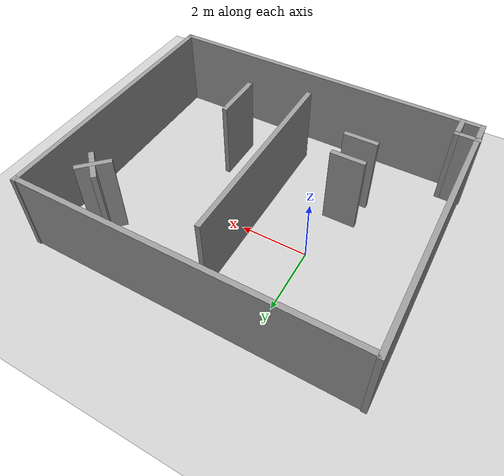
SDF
<sdf version="1.6">
 <world name="default">
  <light name="sun" type="directional">
   <pose>0 0 10 0 -0 0</pose>
   <diffuse>0.8 0.8 0.8 1</diffuse>
   <specular>0.2 0.2 0.2 1</specular>
   <attenuation>
    <range>1000</range>
    <constant>0.9</constant>
    <linear>0.01</linear>
    <quadratic>0.001</quadratic>
   </attenuation>
   <direction>-0.5 0.1 -0.9</direction>
  </light>
  <model name="ground_plane">
   <static>1</static>
   <link name="link">
    <collision name="collision">
     <geometry><plane><normal>0 0 1</normal><size>100 100</size></plane></geometry>
     <surface>
      <contact><collide_bitmask>65535</collide_bitmask></contact>
      <friction><ode><mu>100</mu><mu2>50</mu2></ode></friction>
     </surface>
    </collision>
    <visual name="visual">
     <cast_shadows>0</cast_shadows>
     <geometry><plane><normal>0 0 1</normal><size>100 100</size></plane></geometry>
     <material>
      <script><uri>file://media/materials/scripts/gazebo.material</uri><name>Gazebo/Grey</name></script>
     </material>
    </visual>
   </link>
  </model>
  <physics name="default_physics" default="0" type="ode">
   <real_time_update_rate>1000</real_time_update_rate>
   <max_step_size>0.001</max_step_size>
   <real_time_factor>1</real_time_factor>
   <ode>
    <solver>
     <type>quick</type>
     <iters>150</iters>
     <precon_iters>0</precon_iters>
     <sor>1.4</sor>
     <use_dynamic_moi_rescaling>1</use_dynamic_moi_rescaling>
    </solver>
    <constraints>
     <cfm>1e-05</cfm>
     <erp>0.2</erp>
     <contact_max_correcting_vel>2000</contact_max_correcting_vel>
     <contact_surface_layer>0.01</contact_surface_layer>
    </constraints>
   </ode>
  </physics>
  <model name="sim_world_1">
   <pose>1.82422 -0.69519 0 0 0 -3.14159</pose>
   <link name="Wall_0">
    <pose>-0.016842 -3.925 0 0 -0 0</pose>
    <visual name="Wall_0_Visual">
     <pose>0 0 1.25 0 -0 0</pose>
     <geometry><box><size>10 0.15 2.5</size></box></geometry>
     <material>
      <script><uri>file://media/materials/scripts/gazebo.material</uri><name>Gazebo/Grey</name></script>
      <ambient>1 1 1 1</ambient>
     </material>
     <meta><layer>0</layer></meta>
    </visual>
    <collision name="Wall_0_Collision">
     <pose>0 0 1.25 0 -0 0</pose>
     <geometry><box><size>10 0.15 2.5</size></box></geometry>
     <surface>
      <friction>
       <ode><mu>1</mu><mu2>1</mu2><fdir1>0 0 0</fdir1><slip1>0</slip1><slip2>0</slip2></ode>
       <torsional>
        <coefficient>1</coefficient>
        <patch_radius>0</patch_radius>
        <surface_radius>0</surface_radius>
        <use_patch_radius>1</use_patch_radius>
        <ode><slip>0</slip></ode>
       </torsional>
      </friction>
      <bounce><restitution_coefficient>0</restitution_coefficient><threshold>1e+06</threshold></bounce>
      <contact>
       <collide_without_contact>0</collide_without_contact>
       <collide_without_contact_bitmask>1</collide_without_contact_bitmask>
       <collide_bitmask>1</collide_bitmask>
       <ode>
        <soft_cfm>0</soft_cfm>
        <soft_erp>0.2</soft_erp>
        <kp>1e+13</kp>
        <kd>1</kd>
        <max_vel>0.01</max_vel>
        <min_depth>0</min_depth>
       </ode>
       <bullet>
        <split_impulse>1</split_impulse>
        <split_impulse_penetration_threshold>-0.01</split_impulse_penetration_threshold>
        <soft_cfm>0</soft_cfm>
        <soft_erp>0.2</soft_erp>
        <kp>1e+13</kp>
        <kd>1</kd>
       </bullet>
      </contact>
     </surface>
    </collision>
   </link>
   <link name="Wall_1">
    <pose>4.90816 0 0 0 -0 1.5708</pose>
    <visual name="Wall_1_Visual">
     <pose>0 0 1.25 0 -0 0</pose>
     <geometry><box><size>8.0532 0.15 2.5</size></box></geometry>
     <material>
      <script><uri>file://media/materials/scripts/gazebo.material</uri><name>Gazebo/Grey</name></script>
      <ambient>1 1 1 1</ambient>
     </material>
     <meta><layer>0</layer></meta>
    </visual>
    <collision name="Wall_1_Collision">
     <pose>0 0 1.25 0 -0 0</pose>
     <geometry><box><size>8.0532 0.15 2.5</size></box></geometry>
     <surface>
      <friction>
       <ode><mu>1</mu><mu2>1</mu2><fdir1>0 0 0</fdir1><slip1>0</slip1><slip2>0</slip2></ode>
       <torsional>
        <coefficient>1</coefficient>
        <patch_radius>0</patch_radius>
        <surface_radius>0</surface_radius>
        <use_patch_radius>1</use_patch_radius>
        <ode><slip>0</slip></ode>
       </torsional>
      </friction>
      <bounce><restitution_coefficient>0</restitution_coefficient><threshold>1e+06</threshold></bounce>
      <contact>
       <collide_without_contact>0</collide_without_contact>
       <collide_without_contact_bitmask>1</collide_without_contact_bitmask>
       <collide_bitmask>1</collide_bitmask>
       <ode>
        <soft_cfm>0</soft_cfm>
        <soft_erp>0.2</soft_erp>
        <kp>1e+13</kp>
        <kd>1</kd>
        <max_vel>0.01</max_vel>
        <min_depth>0</min_depth>
       </ode>
       <bullet>
        <split_impulse>1</split_impulse>
        <split_impulse_penetration_threshold>-0.01</split_impulse_penetration_threshold>
        <soft_cfm>0</soft_cfm>
        <soft_erp>0.2</soft_erp>
        <kp>1e+13</kp>
        <kd>1</kd>
       </bullet>
      </contact>
     </surface>
    </collision>
   </link>
   <link name="Wall_10">
    <pose>-3.57656 -2.54651 0 0 -0 0.785398</pose>
    <visual name="Wall_10_Visual">
     <pose>0 0 1.25 0 -0 0</pose>
     <geometry><box><size>1 0.15 2.5</size></box></geometry>
     <material>
      <script><uri>file://media/materials/scripts/gazebo.material</uri><name>Gazebo/Grey</name></script>
      <ambient>1 1 1 1</ambient>
     </material>
     <meta><layer>0</layer></meta>
    </visual>
    <collision name="Wall_10_Collision">
     <pose>0 0 1.25 0 -0 0</pose>
     <geometry><box><size>1 0.15 2.5</size></box></geometry>
     <surface>
      <friction>
       <ode><mu>1</mu><mu2>1</mu2><fdir1>0 0 0</fdir1><slip1>0</slip1><slip2>0</slip2></ode>
       <torsional>
        <coefficient>1</coefficient>
        <patch_radius>0</patch_radius>
        <surface_radius>0</surface_radius>
        <use_patch_radius>1</use_patch_radius>
        <ode><slip>0</slip></ode>
       </torsional>
      </friction>
      <bounce><restitution_coefficient>0</restitution_coefficient><threshold>1e+06</threshold></bounce>
      <contact>
       <collide_without_contact>0</collide_without_contact>
       <collide_without_contact_bitmask>1</collide_without_contact_bitmask>
       <collide_bitmask>1</collide_bitmask>
       <ode>
        <soft_cfm>0</soft_cfm>
        <soft_erp>0.2</soft_erp>
        <kp>1e+13</kp>
        <kd>1</kd>
        <max_vel>0.01</max_vel>
        <min_depth>0</min_depth>
       </ode>
       <bullet>
        <split_impulse>1</split_impulse>
        <split_impulse_penetration_threshold>-0.01</split_impulse_penetration_threshold>
        <soft_cfm>0</soft_cfm>
        <soft_erp>0.2</soft_erp>
        <kp>1e+13</kp>
        <kd>1</kd>
       </bullet>
      </contact>
     </surface>
    </collision>
   </link>
   <link name="Wall_12">
    <pose>-3.58163 -2.57159 0 0 0 -0.785398</pose>
    <visual name="Wall_12_Visual">
     <pose>0 0 1.25 0 -0 0</pose>
     <geometry><box><size>1 0.15 2.5</size></box></geometry>
     <material>
      <script><uri>file://media/materials/scripts/gazebo.material</uri><name>Gazebo/Grey</name></script>
      <ambient>1 1 1 1</ambient>
     </material>
     <meta><layer>0</layer></meta>
    </visual>
    <collision name="Wall_12_Collision">
     <pose>0 0 1.25 0 -0 0</pose>
     <geometry><box><size>1 0.15 2.5</size></box></geometry>
     <surface>
      <friction>
       <ode><mu>1</mu><mu2>1</mu2><fdir1>0 0 0</fdir1><slip1>0</slip1><slip2>0</slip2></ode>
       <torsional>
        <coefficient>1</coefficient>
        <patch_radius>0</patch_radius>
        <surface_radius>0</surface_radius>
        <use_patch_radius>1</use_patch_radius>
        <ode><slip>0</slip></ode>
       </torsional>
      </friction>
      <bounce><restitution_coefficient>0</restitution_coefficient><threshold>1e+06</threshold></bounce>
      <contact>
       <collide_without_contact>0</collide_without_contact>
       <collide_without_contact_bitmask>1</collide_without_contact_bitmask>
       <collide_bitmask>1</collide_bitmask>
       <ode>
        <soft_cfm>0</soft_cfm>
        <soft_erp>0.2</soft_erp>
        <kp>1e+13</kp>
        <kd>1</kd>
        <max_vel>0.01</max_vel>
        <min_depth>0</min_depth>
       </ode>
       <bullet>
        <split_impulse>1</split_impulse>
        <split_impulse_penetration_threshold>-0.01</split_impulse_penetration_threshold>
        <soft_cfm>0</soft_cfm>
        <soft_erp>0.2</soft_erp>
        <kp>1e+13</kp>
        <kd>1</kd>
       </bullet>
      </contact>
     </surface>
    </collision>
   </link>
   <link name="Wall_14">
    <pose>4.34184 3.63889 0 0 0 -1.5708</pose>
    <visual name="Wall_14_Visual">
     <pose>0 0 1.25 0 -0 0</pose>
     <geometry><box><size>0.75 0.15 2.5</size></box></geometry>
     <material>
      <script><uri>file://media/materials/scripts/gazebo.material</uri><name>Gazebo/Grey</name></script>
      <ambient>1 1 1 1</ambient>
     </material>
     <meta><layer>0</layer></meta>
    </visual>
    <collision name="Wall_14_Collision">
     <pose>0 0 1.25 0 -0 0</pose>
     <geometry><box><size>0.75 0.15 2.5</size></box></geometry>
     <surface>
      <friction>
       <ode><mu>1</mu><mu2>1</mu2><fdir1>0 0 0</fdir1><slip1>0</slip1><slip2>0</slip2></ode>
       <torsional>
        <coefficient>1</coefficient>
        <patch_radius>0</patch_radius>
        <surface_radius>0</surface_radius>
        <use_patch_radius>1</use_patch_radius>
        <ode><slip>0</slip></ode>
       </torsional>
      </friction>
      <bounce><restitution_coefficient>0</restitution_coefficient><threshold>1e+06</threshold></bounce>
      <contact>
       <collide_without_contact>0</collide_without_contact>
       <collide_without_contact_bitmask>1</collide_without_contact_bitmask>
       <collide_bitmask>1</collide_bitmask>
       <ode>
        <soft_cfm>0</soft_cfm>
        <soft_erp>0.2</soft_erp>
        <kp>1e+13</kp>
        <kd>1</kd>
        <max_vel>0.01</max_vel>
        <min_depth>0</min_depth>
       </ode>
       <bullet>
        <split_impulse>1</split_impulse>
        <split_impulse_penetration_threshold>-0.01</split_impulse_penetration_threshold>
        <soft_cfm>0</soft_cfm>
        <soft_erp>0.2</soft_erp>
        <kp>1e+13</kp>
        <kd>1</kd>
       </bullet>
      </contact>
     </surface>
    </collision>
   </link>
   <link name="Wall_15">
    <pose>4.64184 3.33889 0 0 -0 0</pose>
    <visual name="Wall_15_Visual">
     <pose>0 0 1.25 0 -0 0</pose>
     <geometry><box><size>0.75 0.15 2.5</size></box></geometry>
     <material>
      <script><uri>file://media/materials/scripts/gazebo.material</uri><name>Gazebo/Grey</name></script>
      <ambient>1 1 1 1</ambient>
     </material>
     <meta><layer>0</layer></meta>
    </visual>
    <collision name="Wall_15_Collision">
     <pose>0 0 1.25 0 -0 0</pose>
     <geometry><box><size>0.75 0.15 2.5</size></box></geometry>
     <surface>
      <friction>
       <ode><mu>1</mu><mu2>1</mu2><fdir1>0 0 0</fdir1><slip1>0</slip1><slip2>0</slip2></ode>
       <torsional>
        <coefficient>1</coefficient>
        <patch_radius>0</patch_radius>
        <surface_radius>0</surface_radius>
        <use_patch_radius>1</use_patch_radius>
        <ode><slip>0</slip></ode>
       </torsional>
      </friction>
      <bounce><restitution_coefficient>0</restitution_coefficient><threshold>1e+06</threshold></bounce>
      <contact>
       <collide_without_contact>0</collide_without_contact>
       <collide_without_contact_bitmask>1</collide_without_contact_bitmask>
       <collide_bitmask>1</collide_bitmask>
       <ode>
        <soft_cfm>0</soft_cfm>
        <soft_erp>0.2</soft_erp>
        <kp>1e+13</kp>
        <kd>1</kd>
        <max_vel>0.01</max_vel>
        <min_depth>0</min_depth>
       </ode>
       <bullet>
        <split_impulse>1</split_impulse>
        <split_impulse_penetration_threshold>-0.01</split_impulse_penetration_threshold>
        <soft_cfm>0</soft_cfm>
        <soft_erp>0.2</soft_erp>
        <kp>1e+13</kp>
        <kd>1</kd>
       </bullet>
      </contact>
     </surface>
    </collision>
   </link>
   <link name="Wall_17">
    <pose>-1.80727 1.833 0 0 0 -1.5708</pose>
    <visual name="Wall_17_Visual">
     <pose>0 0 1.25 0 -0 0</pose>
     <geometry><box><size>1.5 0.15 2.5</size></box></geometry>
     <material>
      <script><uri>file://media/materials/scripts/gazebo.material</uri><name>Gazebo/Grey</name></script>
      <ambient>1 1 1 1</ambient>
     </material>
     <meta><layer>0</layer></meta>
    </visual>
    <collision name="Wall_17_Collision">
     <pose>0 0 1.25 0 -0 0</pose>
     <geometry><box><size>1.5 0.15 2.5</size></box></geometry>
     <surface>
      <friction>
       <ode><mu>1</mu><mu2>1</mu2><fdir1>0 0 0</fdir1><slip1>0</slip1><slip2>0</slip2></ode>
       <torsional>
        <coefficient>1</coefficient>
        <patch_radius>0</patch_radius>
        <surface_radius>0</surface_radius>
        <use_patch_radius>1</use_patch_radius>
        <ode><slip>0</slip></ode>
       </torsional>
      </friction>
      <bounce><restitution_coefficient>0</restitution_coefficient><threshold>1e+06</threshold></bounce>
      <contact>
       <collide_without_contact>0</collide_without_contact>
       <collide_without_contact_bitmask>1</collide_without_contact_bitmask>
       <collide_bitmask>1</collide_bitmask>
       <ode>
        <soft_cfm>0</soft_cfm>
        <soft_erp>0.2</soft_erp>
        <kp>1e+13</kp>
        <kd>1</kd>
        <max_vel>0.01</max_vel>
        <min_depth>0</min_depth>
       </ode>
       <bullet>
        <split_impulse>1</split_impulse>
        <split_impulse_penetration_threshold>-0.01</split_impulse_penetration_threshold>
        <soft_cfm>0</soft_cfm>
        <soft_erp>0.2</soft_erp>
        <kp>1e+13</kp>
        <kd>1</kd>
       </bullet>
      </contact>
     </surface>
    </collision>
   </link>
   <link name="Wall_2">
    <pose>-0.016842 3.9516 0 0 -0 3.14159</pose>
    <visual name="Wall_2_Visual">
     <pose>0 0 1.25 0 -0 0</pose>
     <geometry><box><size>10 0.15 2.5</size></box></geometry>
     <material>
      <script><uri>file://media/materials/scripts/gazebo.material</uri><name>Gazebo/Grey</name></script>
      <ambient>1 1 1 1</ambient>
     </material>
     <meta><layer>0</layer></meta>
    </visual>
    <collision name="Wall_2_Collision">
     <pose>0 0 1.25 0 -0 0</pose>
     <geometry><box><size>10 0.15 2.5</size></box></geometry>
     <surface>
      <friction>
       <ode><mu>1</mu><mu2>1</mu2><fdir1>0 0 0</fdir1><slip1>0</slip1><slip2>0</slip2></ode>
       <torsional>
        <coefficient>1</coefficient>
        <patch_radius>0</patch_radius>
        <surface_radius>0</surface_radius>
        <use_patch_radius>1</use_patch_radius>
        <ode><slip>0</slip></ode>
       </torsional>
      </friction>
      <bounce><restitution_coefficient>0</restitution_coefficient><threshold>1e+06</threshold></bounce>
      <contact>
       <collide_without_contact>0</collide_without_contact>
       <collide_without_contact_bitmask>1</collide_without_contact_bitmask>
       <collide_bitmask>1</collide_bitmask>
       <ode>
        <soft_cfm>0</soft_cfm>
        <soft_erp>0.2</soft_erp>
        <kp>1e+13</kp>
        <kd>1</kd>
        <max_vel>0.01</max_vel>
        <min_depth>0</min_depth>
       </ode>
       <bullet>
        <split_impulse>1</split_impulse>
        <split_impulse_penetration_threshold>-0.01</split_impulse_penetration_threshold>
        <soft_cfm>0</soft_cfm>
        <soft_erp>0.2</soft_erp>
        <kp>1e+13</kp>
        <kd>1</kd>
       </bullet>
      </contact>
     </surface>
    </collision>
   </link>
   <link name="Wall_22">
    <pose>2.12453 1.8423 0 0 -0 0</pose>
    <visual name="Wall_22_Visual">
     <pose>0 0 1.25 0 -0 0</pose>
     <geometry><box><size>1 0.15 2.5</size></box></geometry>
     <material>
      <script><uri>file://media/materials/scripts/gazebo.material</uri><name>Gazebo/Grey</name></script>
      <ambient>1 1 1 1</ambient>
     </material>
     <meta><layer>0</layer></meta>
    </visual>
    <collision name="Wall_22_Collision">
     <pose>0 0 1.25 0 -0 0</pose>
     <geometry><box><size>1 0.15 2.5</size></box></geometry>
     <surface>
      <friction>
       <ode><mu>1</mu><mu2>1</mu2><fdir1>0 0 0</fdir1><slip1>0</slip1><slip2>0</slip2></ode>
       <torsional>
        <coefficient>1</coefficient>
        <patch_radius>0</patch_radius>
        <surface_radius>0</surface_radius>
        <use_patch_radius>1</use_patch_radius>
        <ode><slip>0</slip></ode>
       </torsional>
      </friction>
      <bounce><restitution_coefficient>0</restitution_coefficient><threshold>1e+06</threshold></bounce>
      <contact>
       <collide_without_contact>0</collide_without_contact>
       <collide_without_contact_bitmask>1</collide_without_contact_bitmask>
       <collide_bitmask>1</collide_bitmask>
       <ode>
        <soft_cfm>0</soft_cfm>
        <soft_erp>0.2</soft_erp>
        <kp>1e+13</kp>
        <kd>1</kd>
        <max_vel>0.01</max_vel>
        <min_depth>0</min_depth>
       </ode>
       <bullet>
        <split_impulse>1</split_impulse>
        <split_impulse_penetration_threshold>-0.01</split_impulse_penetration_threshold>
        <soft_cfm>0</soft_cfm>
        <soft_erp>0.2</soft_erp>
        <kp>1e+13</kp>
        <kd>1</kd>
       </bullet>
      </contact>
     </surface>
    </collision>
   </link>
   <link name="Wall_24">
    <pose>2.11637 0.956027 0 0 -0 0</pose>
    <visual name="Wall_24_Visual">
     <pose>0 0 1.25 0 -0 0</pose>
     <geometry><box><size>1 0.15 2.5</size></box></geometry>
     <material>
      <script><uri>file://media/materials/scripts/gazebo.material</uri><name>Gazebo/Grey</name></script>
      <ambient>1 1 1 1</ambient>
     </material>
     <meta><layer>0</layer></meta>
    </visual>
    <collision name="Wall_24_Collision">
     <pose>0 0 1.25 0 -0 0</pose>
     <geometry><box><size>1 0.15 2.5</size></box></geometry>
     <surface>
      <friction>
       <ode><mu>1</mu><mu2>1</mu2><fdir1>0 0 0</fdir1><slip1>0</slip1><slip2>0</slip2></ode>
       <torsional>
        <coefficient>1</coefficient>
        <patch_radius>0</patch_radius>
        <surface_radius>0</surface_radius>
        <use_patch_radius>1</use_patch_radius>
        <ode><slip>0</slip></ode>
       </torsional>
      </friction>
      <bounce><restitution_coefficient>0</restitution_coefficient><threshold>1e+06</threshold></bounce>
      <contact>
       <collide_without_contact>0</collide_without_contact>
       <collide_without_contact_bitmask>1</collide_without_contact_bitmask>
       <collide_bitmask>1</collide_bitmask>
       <ode>
        <soft_cfm>0</soft_cfm>
        <soft_erp>0.2</soft_erp>
        <kp>1e+13</kp>
        <kd>1</kd>
        <max_vel>0.01</max_vel>
        <min_depth>0</min_depth>
       </ode>
       <bullet>
        <split_impulse>1</split_impulse>
        <split_impulse_penetration_threshold>-0.01</split_impulse_penetration_threshold>
        <soft_cfm>0</soft_cfm>
        <soft_erp>0.2</soft_erp>
        <kp>1e+13</kp>
        <kd>1</kd>
       </bullet>
      </contact>
     </surface>
    </collision>
   </link>
   <link name="Wall_3">
    <pose>-4.94184 0 0 0 0 -1.5708</pose>
    <visual name="Wall_3_Visual">
     <pose>0 0 1.25 0 -0 0</pose>
     <geometry><box><size>8.0532 0.15 2.5</size></box></geometry>
     <material>
      <script><uri>file://media/materials/scripts/gazebo.material</uri><name>Gazebo/Grey</name></script>
      <ambient>1 1 1 1</ambient>
     </material>
     <meta><layer>0</layer></meta>
    </visual>
    <collision name="Wall_3_Collision">
     <pose>0 0 1.25 0 -0 0</pose>
     <geometry><box><size>8.0532 0.15 2.5</size></box></geometry>
     <surface>
      <friction>
       <ode><mu>1</mu><mu2>1</mu2><fdir1>0 0 0</fdir1><slip1>0</slip1><slip2>0</slip2></ode>
       <torsional>
        <coefficient>1</coefficient>
        <patch_radius>0</patch_radius>
        <surface_radius>0</surface_radius>
        <use_patch_radius>1</use_patch_radius>
        <ode><slip>0</slip></ode>
       </torsional>
      </friction>
      <bounce><restitution_coefficient>0</restitution_coefficient><threshold>1e+06</threshold></bounce>
      <contact>
       <collide_without_contact>0</collide_without_contact>
       <collide_without_contact_bitmask>1</collide_without_contact_bitmask>
       <collide_bitmask>1</collide_bitmask>
       <ode>
        <soft_cfm>0</soft_cfm>
        <soft_erp>0.2</soft_erp>
        <kp>1e+13</kp>
        <kd>1</kd>
        <max_vel>0.01</max_vel>
        <min_depth>0</min_depth>
       </ode>
       <bullet>
        <split_impulse>1</split_impulse>
        <split_impulse_penetration_threshold>-0.01</split_impulse_penetration_threshold>
        <soft_cfm>0</soft_cfm>
        <soft_erp>0.2</soft_erp>
        <kp>1e+13</kp>
        <kd>1</kd>
       </bullet>
      </contact>
     </surface>
    </collision>
   </link>
   <link name="Wall_5">
    <pose>-0.024447 0.014305 0 0 0 -1.5708</pose>
    <visual name="Wall_5_Visual">
     <pose>0 0 1.25 0 -0 0</pose>
     <geometry><box><size>6 0.15 2.5</size></box></geometry>
     <material>
      <script><uri>file://media/materials/scripts/gazebo.material</uri><name>Gazebo/Grey</name></script>
      <ambient>1 1 1 1</ambient>
     </material>
     <meta><layer>0</layer></meta>
    </visual>
    <collision name="Wall_5_Collision">
     <pose>0 0 1.25 0 -0 0</pose>
     <geometry><box><size>6 0.15 2.5</size></box></geometry>
     <surface>
      <friction>
       <ode><mu>1</mu><mu2>1</mu2><fdir1>0 0 0</fdir1><slip1>0</slip1><slip2>0</slip2></ode>
       <torsional>
        <coefficient>1</coefficient>
        <patch_radius>0</patch_radius>
        <surface_radius>0</surface_radius>
        <use_patch_radius>1</use_patch_radius>
        <ode><slip>0</slip></ode>
       </torsional>
      </friction>
      <bounce><restitution_coefficient>0</restitution_coefficient><threshold>1e+06</threshold></bounce>
      <contact>
       <collide_without_contact>0</collide_without_contact>
       <collide_without_contact_bitmask>1</collide_without_contact_bitmask>
       <collide_bitmask>1</collide_bitmask>
       <ode>
        <soft_cfm>0</soft_cfm>
        <soft_erp>0.2</soft_erp>
        <kp>1e+13</kp>
        <kd>1</kd>
        <max_vel>0.01</max_vel>
        <min_depth>0</min_depth>
       </ode>
       <bullet>
        <split_impulse>1</split_impulse>
        <split_impulse_penetration_threshold>-0.01</split_impulse_penetration_threshold>
        <soft_cfm>0</soft_cfm>
        <soft_erp>0.2</soft_erp>
        <kp>1e+13</kp>
        <kd>1</kd>
       </bullet>
      </contact>
     </surface>
    </collision>
   </link>
   <static>1</static>
  </model>
  <scene><ambient>0.4 0.4 0.4 1</ambient><background>0.7 0.7 0.7 1</background><shadows>1</shadows></scene>
  <gravity>0 0 -9.8</gravity>
  <magnetic_field>6e-06 2.3e-05 -4.2e-05</magnetic_field>
  <atmosphere type="adiabatic"/>
  <audio><device>default</device></audio>
  <spherical_coordinates>
   <surface_model>EARTH_WGS84</surface_model>
   <latitude_deg>0</latitude_deg>
   <longitude_deg>0</longitude_deg>
   <elevation>0</elevation>
   <heading_deg>0</heading_deg>
  </spherical_coordinates>
 </world>
</sdf>
